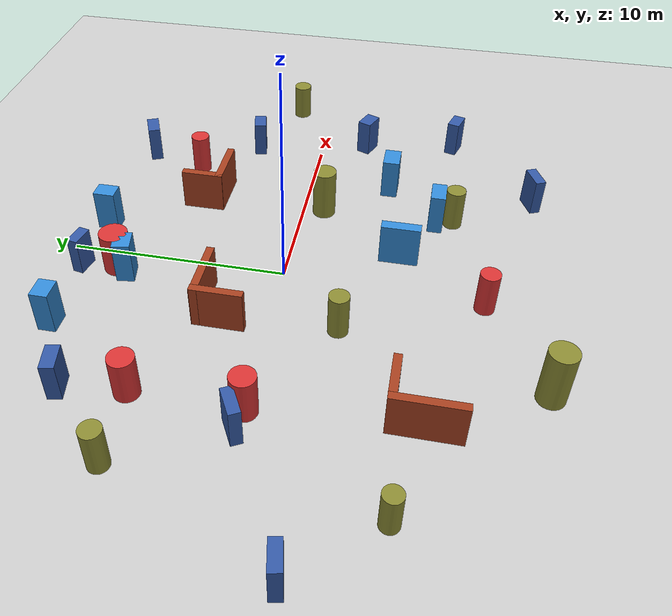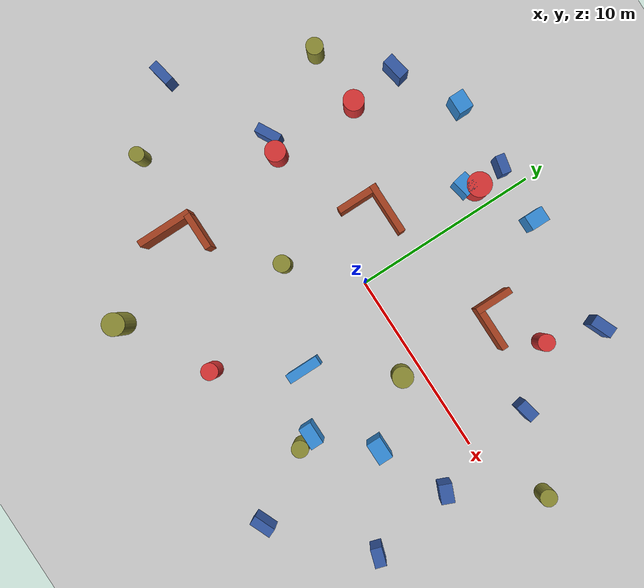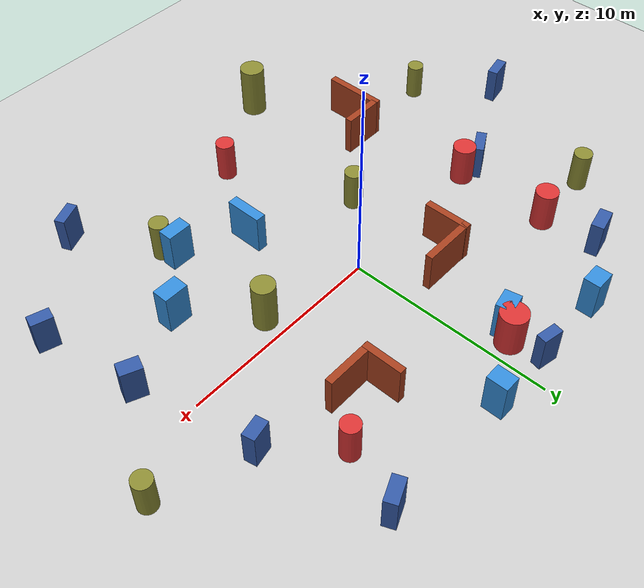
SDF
<sdf version="1.7">
 <world name="mixed_dynamic">
  <light name="sun" type="directional">
   <pose>0 0 18 0 -0 0</pose>
   <diffuse>0.8 0.8 0.8 1</diffuse>
   <specular>0.2 0.2 0.2 1</specular>
   <attenuation>
    <range>1000</range>
    <constant>0.9</constant>
    <linear>0.01</linear>
    <quadratic>0.001</quadratic>
   </attenuation>
   <direction>-0.5 0.1 -0.9</direction>
   <spot><inner_angle>0</inner_angle><outer_angle>0</outer_angle><falloff>0</falloff></spot>
  </light>
  <model name="ground_plane">
   <static>1</static>
   <link name="link">
    <collision name="collision">
     <geometry><plane><normal>0 0 1</normal><size>100 100</size></plane></geometry>
    </collision>
    <visual name="visual"><geometry><plane><normal>0 0 1</normal><size>100 100</size></plane></geometry></visual>
   </link>
  </model>
  <gravity>0 0 -9.8</gravity>
  <physics type="ode">
   <max_step_size>0.001</max_step_size>
   <real_time_factor>1</real_time_factor>
   <real_time_update_rate>1000</real_time_update_rate>
  </physics>
  <scene><ambient>0.4 0.4 0.4 1</ambient><background>0.7 0.7 0.7 1</background><shadows>1</shadows></scene>
  <model name="d1_static_l_h">
   <static>1</static>
   <pose>-2.52081 2.96613 1 0 -0 0</pose>
   <link name="link">
    <collision name="collision">
     <geometry><box><size>2.8 0.35 2</size></box></geometry>
     <surface><contact><collide_without_contact>true</collide_without_contact></contact></surface>
    </collision>
    <visual name="visual">
     <geometry><box><size>2.8 0.35 2</size></box></geometry>
     <material><ambient>0.65 0.25 0.12 1</ambient><diffuse>0.65 0.25 0.12 1</diffuse></material>
    </visual>
   </link>
  </model>
  <model name="d1_static_l_v">
   <static>1</static>
   <pose>-3.74553 2.01 1 0 -0 0</pose>
   <link name="link">
    <collision name="collision">
     <geometry><box><size>0.35 2.3 2</size></box></geometry>
     <surface><contact><collide_without_contact>true</collide_without_contact></contact></surface>
    </collision>
    <visual name="visual">
     <geometry><box><size>0.35 2.3 2</size></box></geometry>
     <material><ambient>0.65 0.25 0.12 1</ambient><diffuse>0.65 0.25 0.12 1</diffuse></material>
    </visual>
   </link>
  </model>
  <model name="d1_static_u_l">
   <static>1</static>
   <pose>4.30148 4.93757 1 0 -0 0</pose>
   <link name="link">
    <collision name="collision">
     <geometry><box><size>0.35 2 2</size></box></geometry>
     <surface><contact><collide_without_contact>true</collide_without_contact></contact></surface>
    </collision>
    <visual name="visual">
     <geometry><box><size>0.35 2 2</size></box></geometry>
     <material><ambient>0.65 0.25 0.12 1</ambient><diffuse>0.65 0.25 0.12 1</diffuse></material>
    </visual>
   </link>
  </model>
  <model name="d1_static_u_b">
   <static>1</static>
   <pose>5.38718 4.10732 1 0 -0 0</pose>
   <link name="link">
    <collision name="collision">
     <geometry><box><size>2.5 0.35 2</size></box></geometry>
     <surface><contact><collide_without_contact>true</collide_without_contact></contact></surface>
    </collision>
    <visual name="visual">
     <geometry><box><size>2.5 0.35 2</size></box></geometry>
     <material><ambient>0.65 0.25 0.12 1</ambient><diffuse>0.65 0.25 0.12 1</diffuse></material>
    </visual>
   </link>
  </model>
  <model name="d1_static_c_top">
   <static>1</static>
   <pose>-6.74407 -5.66919 1 0 -0 0</pose>
   <link name="link">
    <collision name="collision">
     <geometry><box><size>2 0.35 2</size></box></geometry>
     <surface><contact><collide_without_contact>true</collide_without_contact></contact></surface>
    </collision>
    <visual name="visual">
     <geometry><box><size>2 0.35 2</size></box></geometry>
     <material><ambient>0.65 0.25 0.12 1</ambient><diffuse>0.65 0.25 0.12 1</diffuse></material>
    </visual>
   </link>
  </model>
  <model name="d1_static_c_left">
   <static>1</static>
   <pose>-7.8 -7 1 0 -0 0</pose>
   <link name="link">
    <collision name="collision">
     <geometry><box><size>0.35 3 2</size></box></geometry>
     <surface><contact><collide_without_contact>true</collide_without_contact></contact></surface>
    </collision>
    <visual name="visual">
     <geometry><box><size>0.35 3 2</size></box></geometry>
     <material><ambient>0.65 0.25 0.12 1</ambient><diffuse>0.65 0.25 0.12 1</diffuse></material>
    </visual>
   </link>
  </model>
  <model name="d1_static_box_00">
   <static>1</static>
   <pose>-8.30046 7.23271 0.9 0 -0 0.2</pose>
   <link name="link">
    <collision name="collision">
     <geometry><box><size>1.2 0.6 1.8</size></box></geometry>
     <surface><contact><collide_without_contact>true</collide_without_contact></contact></surface>
    </collision>
    <visual name="visual">
     <geometry><box><size>1.2 0.6 1.8</size></box></geometry>
     <material><ambient>0.2 0.35 0.65 1</ambient><diffuse>0.2 0.35 0.65 1</diffuse></material>
    </visual>
   </link>
  </model>
  <model name="d1_static_box_03">
   <static>1</static>
   <pose>-1.22378 9.10025 0.9 0 0 -0.2</pose>
   <link name="link">
    <collision name="collision">
     <geometry><box><size>1 0.5 1.8</size></box></geometry>
     <surface><contact><collide_without_contact>true</collide_without_contact></contact></surface>
    </collision>
    <visual name="visual">
     <geometry><box><size>1 0.5 1.8</size></box></geometry>
     <material><ambient>0.2 0.35 0.65 1</ambient><diffuse>0.2 0.35 0.65 1</diffuse></material>
    </visual>
   </link>
  </model>
  <model name="d1_static_box_04">
   <static>1</static>
   <pose>8.41145 8.89178 0.9 0 -0 0.4</pose>
   <link name="link">
    <collision name="collision">
     <geometry><box><size>1.2 0.6 1.8</size></box></geometry>
     <surface><contact><collide_without_contact>true</collide_without_contact></contact></surface>
    </collision>
    <visual name="visual">
     <geometry><box><size>1.2 0.6 1.8</size></box></geometry>
     <material><ambient>0.2 0.35 0.65 1</ambient><diffuse>0.2 0.35 0.65 1</diffuse></material>
    </visual>
   </link>
  </model>
  <model name="d1_static_box_06">
   <static>1</static>
   <pose>9.91352 3.36395 0.9 0 -0 0.2</pose>
   <link name="link">
    <collision name="collision">
     <geometry><box><size>1 0.6 1.8</size></box></geometry>
     <surface><contact><collide_without_contact>true</collide_without_contact></contact></surface>
    </collision>
    <visual name="visual">
     <geometry><box><size>1 0.6 1.8</size></box></geometry>
     <material><ambient>0.2 0.35 0.65 1</ambient><diffuse>0.2 0.35 0.65 1</diffuse></material>
    </visual>
   </link>
  </model>
  <model name="d1_static_box_07">
   <static>1</static>
   <pose>-9 0 0.9 0 -0 0.5</pose>
   <link name="link">
    <collision name="collision">
     <geometry><box><size>1.3 0.5 1.8</size></box></geometry>
     <surface><contact><collide_without_contact>true</collide_without_contact></contact></surface>
    </collision>
    <visual name="visual">
     <geometry><box><size>1.3 0.5 1.8</size></box></geometry>
     <material><ambient>0.2 0.35 0.65 1</ambient><diffuse>0.2 0.35 0.65 1</diffuse></material>
    </visual>
   </link>
  </model>
  <model name="d1_static_box_08">
   <static>1</static>
   <pose>11.1885 -2.34961 0.9 0 0 -0.4</pose>
   <link name="link">
    <collision name="collision">
     <geometry><box><size>1 0.7 1.8</size></box></geometry>
     <surface><contact><collide_without_contact>true</collide_without_contact></contact></surface>
    </collision>
    <visual name="visual">
     <geometry><box><size>1 0.7 1.8</size></box></geometry>
     <material><ambient>0.2 0.35 0.65 1</ambient><diffuse>0.2 0.35 0.65 1</diffuse></material>
    </visual>
   </link>
  </model>
  <model name="d1_static_box_09">
   <static>1</static>
   <pose>-14.4845 -2.86926 0.9 0 -0 0.2</pose>
   <link name="link">
    <collision name="collision">
     <geometry><box><size>1.2 0.5 1.8</size></box></geometry>
     <surface><contact><collide_without_contact>true</collide_without_contact></contact></surface>
    </collision>
    <visual name="visual">
     <geometry><box><size>1.2 0.5 1.8</size></box></geometry>
     <material><ambient>0.2 0.35 0.65 1</ambient><diffuse>0.2 0.35 0.65 1</diffuse></material>
    </visual>
   </link>
  </model>
  <model name="d1_static_box_13">
   <static>1</static>
   <pose>7.51106 -11.0569 0.9 0 -0 0.4</pose>
   <link name="link">
    <collision name="collision">
     <geometry><box><size>1.2 0.5 1.8</size></box></geometry>
     <surface><contact><collide_without_contact>true</collide_without_contact></contact></surface>
    </collision>
    <visual name="visual">
     <geometry><box><size>1.2 0.5 1.8</size></box></geometry>
     <material><ambient>0.2 0.35 0.65 1</ambient><diffuse>0.2 0.35 0.65 1</diffuse></material>
    </visual>
   </link>
  </model>
  <model name="d1_static_box_14">
   <static>1</static>
   <pose>12.0065 -6.98779 0.9 0 0 -0.3</pose>
   <link name="link">
    <collision name="collision">
     <geometry><box><size>1 0.6 1.8</size></box></geometry>
     <surface><contact><collide_without_contact>true</collide_without_contact></contact></surface>
    </collision>
    <visual name="visual">
     <geometry><box><size>1 0.6 1.8</size></box></geometry>
     <material><ambient>0.2 0.35 0.65 1</ambient><diffuse>0.2 0.35 0.65 1</diffuse></material>
    </visual>
   </link>
  </model>
  <model name="d1_static_cylinder_00">
   <static>1</static>
   <pose>-11.3471 4.32732 1 0 -0 0</pose>
   <link name="link">
    <collision name="collision">
     <geometry><cylinder><radius>0.45</radius><length>2</length></cylinder></geometry>
     <surface><contact><collide_without_contact>true</collide_without_contact></contact></surface>
    </collision>
    <visual name="visual">
     <geometry><cylinder><radius>0.45</radius><length>2</length></cylinder></geometry>
     <material><ambient>0.55 0.55 0.2 1</ambient><diffuse>0.55 0.55 0.2 1</diffuse></material>
    </visual>
   </link>
  </model>
  <model name="d1_static_cylinder_05">
   <static>1</static>
   <pose>14.1618 1.85349 0.9 0 -0 0</pose>
   <link name="link">
    <collision name="collision">
     <geometry><cylinder><radius>0.45</radius><length>1.8</length></cylinder></geometry>
     <surface><contact><collide_without_contact>true</collide_without_contact></contact></surface>
    </collision>
    <visual name="visual">
     <geometry><cylinder><radius>0.45</radius><length>1.8</length></cylinder></geometry>
     <material><ambient>0.55 0.55 0.2 1</ambient><diffuse>0.55 0.55 0.2 1</diffuse></material>
    </visual>
   </link>
  </model>
  <model name="d1_static_cylinder_07">
   <static>1</static>
   <pose>-3.07555 -2.99763 1 0 -0 0</pose>
   <link name="link">
    <collision name="collision">
     <geometry><cylinder><radius>0.45</radius><length>2</length></cylinder></geometry>
     <surface><contact><collide_without_contact>true</collide_without_contact></contact></surface>
    </collision>
    <visual name="visual">
     <geometry><cylinder><radius>0.45</radius><length>2</length></cylinder></geometry>
     <material><ambient>0.55 0.55 0.2 1</ambient><diffuse>0.55 0.55 0.2 1</diffuse></material>
    </visual>
   </link>
  </model>
  <model name="d1_static_cylinder_08">
   <static>1</static>
   <pose>5 -1 1.2 0 -0 0</pose>
   <link name="link">
    <collision name="collision">
     <geometry><cylinder><radius>0.55</radius><length>2.4</length></cylinder></geometry>
     <surface><contact><collide_without_contact>true</collide_without_contact></contact></surface>
    </collision>
    <visual name="visual">
     <geometry><cylinder><radius>0.55</radius><length>2.4</length></cylinder></geometry>
     <material><ambient>0.55 0.55 0.2 1</ambient><diffuse>0.55 0.55 0.2 1</diffuse></material>
    </visual>
   </link>
  </model>
  <model name="d1_static_cylinder_09">
   <static>1</static>
   <pose>-11.6994 -6.14289 0.9 0 -0 0</pose>
   <link name="link">
    <collision name="collision">
     <geometry><cylinder><radius>0.4</radius><length>1.8</length></cylinder></geometry>
     <surface><contact><collide_without_contact>true</collide_without_contact></contact></surface>
    </collision>
    <visual name="visual">
     <geometry><cylinder><radius>0.4</radius><length>1.8</length></cylinder></geometry>
     <material><ambient>0.55 0.55 0.2 1</ambient><diffuse>0.55 0.55 0.2 1</diffuse></material>
    </visual>
   </link>
  </model>
  <model name="d1_static_cylinder_10">
   <static>1</static>
   <pose>-5.04569 -11.6399 1.3 0 -0 0</pose>
   <link name="link">
    <collision name="collision">
     <geometry><cylinder><radius>0.6</radius><length>2.6</length></cylinder></geometry>
     <surface><contact><collide_without_contact>true</collide_without_contact></contact></surface>
    </collision>
    <visual name="visual">
     <geometry><cylinder><radius>0.6</radius><length>2.6</length></cylinder></geometry>
     <material><ambient>0.55 0.55 0.2 1</ambient><diffuse>0.55 0.55 0.2 1</diffuse></material>
    </visual>
   </link>
  </model>
  <model name="d1_static_cylinder_11">
   <static>1</static>
   <pose>5.25002 -7.30308 1 0 -0 0</pose>
   <link name="link">
    <collision name="collision">
     <geometry><cylinder><radius>0.45</radius><length>2</length></cylinder></geometry>
     <surface><contact><collide_without_contact>true</collide_without_contact></contact></surface>
    </collision>
    <visual name="visual">
     <geometry><cylinder><radius>0.45</radius><length>2</length></cylinder></geometry>
     <material><ambient>0.55 0.55 0.2 1</ambient><diffuse>0.55 0.55 0.2 1</diffuse></material>
    </visual>
   </link>
  </model>
  <model name="d1_crossing_00">
   <static>0</static>
   <pose>-1 7.50595 1.000 0 -0 1.5708</pose>
   <link name="link">
    <gravity>0</gravity>
    <kinematic>1</kinematic>
    <collision name="collision">
     <geometry><cylinder><radius>0.65</radius><length>2</length></cylinder></geometry>
     <surface><contact><collide_without_contact>true</collide_without_contact></contact></surface>
    </collision>
    <visual name="visual">
     <geometry><cylinder><radius>0.65</radius><length>2</length></cylinder></geometry>
     <material><ambient>0.85 0.2 0.2 1</ambient><diffuse>0.85 0.2 0.2 1</diffuse></material>
    </visual>
    <inertial>
     <inertia><ixx>1</ixx><ixy>0</ixy><ixz>0</ixz><iyy>1</iyy><iyz>0</iyz><izz>1</izz></inertia>
     <mass>1</mass>
    </inertial>
   </link>
   <plugin name="waypoint_motion" filename="libwaypointObstaclePlugin.so">
    <velocity>0.35</velocity>
    <loop>1</loop>
    <orientation>1</orientation>
    <angular_velocity>0.8</angular_velocity>
    <path><waypoint>-1.000 -10.000 1.000</waypoint><waypoint>-1.000 10.000 1.000</waypoint></path>
   </plugin>
  </model>
  <model name="d1_crossing_01">
   <static>0</static>
   <pose>2 9.00646 1.000 0 -0 1.5708</pose>
   <link name="link">
    <gravity>0</gravity>
    <kinematic>1</kinematic>
    <collision name="collision">
     <geometry><box><size>1 0.8 2</size></box></geometry>
     <surface><contact><collide_without_contact>true</collide_without_contact></contact></surface>
    </collision>
    <visual name="visual">
     <geometry><box><size>1 0.8 2</size></box></geometry>
     <material><ambient>0.2 0.55 0.85 1</ambient><diffuse>0.2 0.55 0.85 1</diffuse></material>
    </visual>
    <inertial>
     <inertia><ixx>1</ixx><ixy>0</ixy><ixz>0</ixz><iyy>1</iyy><iyz>0</iyz><izz>1</izz></inertia>
     <mass>1</mass>
    </inertial>
   </link>
   <plugin name="waypoint_motion" filename="libwaypointObstaclePlugin.so">
    <velocity>0.38</velocity>
    <loop>1</loop>
    <orientation>1</orientation>
    <angular_velocity>0.8</angular_velocity>
    <path><waypoint>2.000 -10.000 1.000</waypoint><waypoint>2.000 10.000 1.000</waypoint></path>
   </plugin>
  </model>
  <model name="d1_crossing_02">
   <static>0</static>
   <pose>5 -6.49303 1.000 0 -0 1.5708</pose>
   <link name="link">
    <gravity>0</gravity>
    <kinematic>1</kinematic>
    <collision name="collision">
     <geometry><box><size>0.7 1.2 2</size></box></geometry>
     <surface><contact><collide_without_contact>true</collide_without_contact></contact></surface>
    </collision>
    <visual name="visual">
     <geometry><box><size>0.7 1.2 2</size></box></geometry>
     <material><ambient>0.2 0.55 0.85 1</ambient><diffuse>0.2 0.55 0.85 1</diffuse></material>
    </visual>
    <inertial>
     <inertia><ixx>1</ixx><ixy>0</ixy><ixz>0</ixz><iyy>1</iyy><iyz>0</iyz><izz>1</izz></inertia>
     <mass>1</mass>
    </inertial>
   </link>
   <plugin name="waypoint_motion" filename="libwaypointObstaclePlugin.so">
    <velocity>0.41</velocity>
    <loop>1</loop>
    <orientation>1</orientation>
    <angular_velocity>0.8</angular_velocity>
    <path><waypoint>5.000 -9.000 1.000</waypoint><waypoint>5.000 9.000 1.000</waypoint></path>
   </plugin>
  </model>
  <model name="d1_oncoming_00">
   <static>0</static>
   <pose>-7.99252 -0.2 1.000 0 -0 0</pose>
   <link name="link">
    <gravity>0</gravity>
    <kinematic>1</kinematic>
    <collision name="collision">
     <geometry><cylinder><radius>0.55</radius><length>2</length></cylinder></geometry>
     <surface><contact><collide_without_contact>true</collide_without_contact></contact></surface>
    </collision>
    <visual name="visual">
     <geometry><cylinder><radius>0.55</radius><length>2</length></cylinder></geometry>
     <material><ambient>0.85 0.2 0.2 1</ambient><diffuse>0.85 0.2 0.2 1</diffuse></material>
    </visual>
    <inertial>
     <inertia><ixx>1</ixx><ixy>0</ixy><ixz>0</ixz><iyy>1</iyy><iyz>0</iyz><izz>1</izz></inertia>
     <mass>1</mass>
    </inertial>
   </link>
   <plugin name="waypoint_motion" filename="libwaypointObstaclePlugin.so">
    <velocity>0.43999999999999995</velocity>
    <loop>1</loop>
    <orientation>1</orientation>
    <angular_velocity>0.8</angular_velocity>
    <path><waypoint>-10.000 -0.200 1.000</waypoint><waypoint>10.000 -0.200 1.000</waypoint></path>
   </plugin>
  </model>
  <model name="d1_same_direction_00">
   <static>0</static>
   <pose>7.50595 -4 1.000 0 -0 0</pose>
   <link name="link">
    <gravity>0</gravity>
    <kinematic>1</kinematic>
    <collision name="collision">
     <geometry><box><size>1.2 0.8 2</size></box></geometry>
     <surface><contact><collide_without_contact>true</collide_without_contact></contact></surface>
    </collision>
    <visual name="visual">
     <geometry><box><size>1.2 0.8 2</size></box></geometry>
     <material><ambient>0.2 0.55 0.85 1</ambient><diffuse>0.2 0.55 0.85 1</diffuse></material>
    </visual>
    <inertial>
     <inertia><ixx>1</ixx><ixy>0</ixy><ixz>0</ixz><iyy>1</iyy><iyz>0</iyz><izz>1</izz></inertia>
     <mass>1</mass>
    </inertial>
   </link>
   <plugin name="waypoint_motion" filename="libwaypointObstaclePlugin.so">
    <velocity>0.35</velocity>
    <loop>1</loop>
    <orientation>1</orientation>
    <angular_velocity>0.8</angular_velocity>
    <path><waypoint>-10.000 -4.000 1.000</waypoint><waypoint>10.000 -4.000 1.000</waypoint></path>
   </plugin>
  </model>
  <model name="d1_same_direction_01">
   <static>0</static>
   <pose>-7.99354 4.5 1.000 0 -0 0</pose>
   <link name="link">
    <gravity>0</gravity>
    <kinematic>1</kinematic>
    <collision name="collision">
     <geometry><cylinder><radius>0.55</radius><length>2</length></cylinder></geometry>
     <surface><contact><collide_without_contact>true</collide_without_contact></contact></surface>
    </collision>
    <visual name="visual">
     <geometry><cylinder><radius>0.55</radius><length>2</length></cylinder></geometry>
     <material><ambient>0.85 0.2 0.2 1</ambient><diffuse>0.85 0.2 0.2 1</diffuse></material>
    </visual>
    <inertial>
     <inertia><ixx>1</ixx><ixy>0</ixy><ixz>0</ixz><iyy>1</iyy><iyz>0</iyz><izz>1</izz></inertia>
     <mass>1</mass>
    </inertial>
   </link>
   <plugin name="waypoint_motion" filename="libwaypointObstaclePlugin.so">
    <velocity>0.38</velocity>
    <loop>1</loop>
    <orientation>1</orientation>
    <angular_velocity>0.8</angular_velocity>
    <path><waypoint>-9.000 4.500 1.000</waypoint><waypoint>9.000 4.500 1.000</waypoint></path>
   </plugin>
  </model>
  <model name="d1_turning_01">
   <static>0</static>
   <pose>2 -5.00748 1.000 0 0 -1.5708</pose>
   <link name="link">
    <gravity>0</gravity>
    <kinematic>1</kinematic>
    <collision name="collision">
     <geometry><box><size>1.8 0.5 2</size></box></geometry>
     <surface><contact><collide_without_contact>true</collide_without_contact></contact></surface>
    </collision>
    <visual name="visual">
     <geometry><box><size>1.8 0.5 2</size></box></geometry>
     <material><ambient>0.2 0.55 0.85 1</ambient><diffuse>0.2 0.55 0.85 1</diffuse></material>
    </visual>
    <inertial>
     <inertia><ixx>1</ixx><ixy>0</ixy><ixz>0</ixz><iyy>1</iyy><iyz>0</iyz><izz>1</izz></inertia>
     <mass>1</mass>
    </inertial>
   </link>
   <plugin name="waypoint_motion" filename="libwaypointObstaclePlugin.so">
    <velocity>0.43999999999999995</velocity>
    <loop>1</loop>
    <orientation>1</orientation>
    <angular_velocity>0.8</angular_velocity>
    <path>
     <waypoint>6.000 -7.000 1.000</waypoint>
     <waypoint>6.000 -3.000 1.000</waypoint>
     <waypoint>2.000 -3.000 1.000</waypoint>
     <waypoint>2.000 -7.000 1.000</waypoint>
    </path>
   </plugin>
  </model>
  <model name="d1_stop_go_00">
   <static>0</static>
   <pose>-4.99354 9 1.000 0 -0 0</pose>
   <link name="link">
    <gravity>0</gravity>
    <kinematic>1</kinematic>
    <collision name="collision">
     <geometry><box><size>1 0.8 2</size></box></geometry>
     <surface><contact><collide_without_contact>true</collide_without_contact></contact></surface>
    </collision>
    <visual name="visual">
     <geometry><box><size>1 0.8 2</size></box></geometry>
     <material><ambient>0.2 0.55 0.85 1</ambient><diffuse>0.2 0.55 0.85 1</diffuse></material>
    </visual>
    <inertial>
     <inertia><ixx>1</ixx><ixy>0</ixy><ixz>0</ixz><iyy>1</iyy><iyz>0</iyz><izz>1</izz></inertia>
     <mass>1</mass>
    </inertial>
   </link>
   <plugin name="waypoint_motion" filename="libwaypointObstaclePlugin.so">
    <velocity>0.38</velocity>
    <loop>1</loop>
    <orientation>1</orientation>
    <angular_velocity>0.8</angular_velocity>
    <path><waypoint>-8.000 9.000 1.000</waypoint><waypoint>8.000 9.000 1.000</waypoint></path>
   </plugin>
  </model>
  <model name="d1_stop_go_01">
   <static>0</static>
   <pose>-0.49303 -9 1.000 0 -0 0</pose>
   <link name="link">
    <gravity>0</gravity>
    <kinematic>1</kinematic>
    <collision name="collision">
     <geometry><cylinder><radius>0.45</radius><length>2</length></cylinder></geometry>
     <surface><contact><collide_without_contact>true</collide_without_contact></contact></surface>
    </collision>
    <visual name="visual">
     <geometry><cylinder><radius>0.45</radius><length>2</length></cylinder></geometry>
     <material><ambient>0.85 0.2 0.2 1</ambient><diffuse>0.85 0.2 0.2 1</diffuse></material>
    </visual>
    <inertial>
     <inertia><ixx>1</ixx><ixy>0</ixy><ixz>0</ixz><iyy>1</iyy><iyz>0</iyz><izz>1</izz></inertia>
     <mass>1</mass>
    </inertial>
   </link>
   <plugin name="waypoint_motion" filename="libwaypointObstaclePlugin.so">
    <velocity>0.41</velocity>
    <loop>1</loop>
    <orientation>1</orientation>
    <angular_velocity>0.8</angular_velocity>
    <path><waypoint>-7.000 -9.000 1.000</waypoint><waypoint>7.000 -9.000 1.000</waypoint></path>
   </plugin>
  </model>
  <model name="d1_crossing_04">
   <static>0</static>
   <pose>-1.3897 6.94852 1.000 0 0 -1.3734</pose>
   <link name="link">
    <gravity>0</gravity>
    <kinematic>1</kinematic>
    <collision name="collision">
     <geometry><box><size>0.8 1 2</size></box></geometry>
     <surface><contact><collide_without_contact>true</collide_without_contact></contact></surface>
    </collision>
    <visual name="visual">
     <geometry><box><size>0.8 1 2</size></box></geometry>
     <material><ambient>0.2 0.55 0.85 1</ambient><diffuse>0.2 0.55 0.85 1</diffuse></material>
    </visual>
    <inertial>
     <inertia><ixx>1</ixx><ixy>0</ixy><ixz>0</ixz><iyy>1</iyy><iyz>0</iyz><izz>1</izz></inertia>
     <mass>1</mass>
    </inertial>
   </link>
   <plugin name="waypoint_motion" filename="libwaypointObstaclePlugin.so">
    <velocity>0.47</velocity>
    <loop>1</loop>
    <orientation>1</orientation>
    <angular_velocity>0.8</angular_velocity>
    <path><waypoint>-2.000 10.000 1.000</waypoint><waypoint>2.000 -10.000 1.000</waypoint></path>
   </plugin>
  </model>
  <model name="d1_same_direction_02">
   <static>0</static>
   <pose>7.50595 6 1.000 0 -0 0</pose>
   <link name="link">
    <gravity>0</gravity>
    <kinematic>1</kinematic>
    <collision name="collision">
     <geometry><cylinder><radius>0.45</radius><length>2</length></cylinder></geometry>
     <surface><contact><collide_without_contact>true</collide_without_contact></contact></surface>
    </collision>
    <visual name="visual">
     <geometry><cylinder><radius>0.45</radius><length>2</length></cylinder></geometry>
     <material><ambient>0.85 0.2 0.2 1</ambient><diffuse>0.85 0.2 0.2 1</diffuse></material>
    </visual>
    <inertial>
     <inertia><ixx>1</ixx><ixy>0</ixy><ixz>0</ixz><iyy>1</iyy><iyz>0</iyz><izz>1</izz></inertia>
     <mass>1</mass>
    </inertial>
   </link>
   <plugin name="waypoint_motion" filename="libwaypointObstaclePlugin.so">
    <velocity>0.35</velocity>
    <loop>1</loop>
    <orientation>1</orientation>
    <angular_velocity>0.8</angular_velocity>
    <path><waypoint>-10.000 6.000 1.000</waypoint><waypoint>10.000 6.000 1.000</waypoint></path>
   </plugin>
  </model>
  <magnetic_field>6e-06 2.3e-05 -4.2e-05</magnetic_field>
  <atmosphere type="adiabatic"/>
  <spherical_coordinates>
   <surface_model>EARTH_WGS84</surface_model>
   <latitude_deg>0</latitude_deg>
   <longitude_deg>0</longitude_deg>
   <elevation>0</elevation>
   <heading_deg>0</heading_deg>
  </spherical_coordinates>
 </world>
</sdf>
